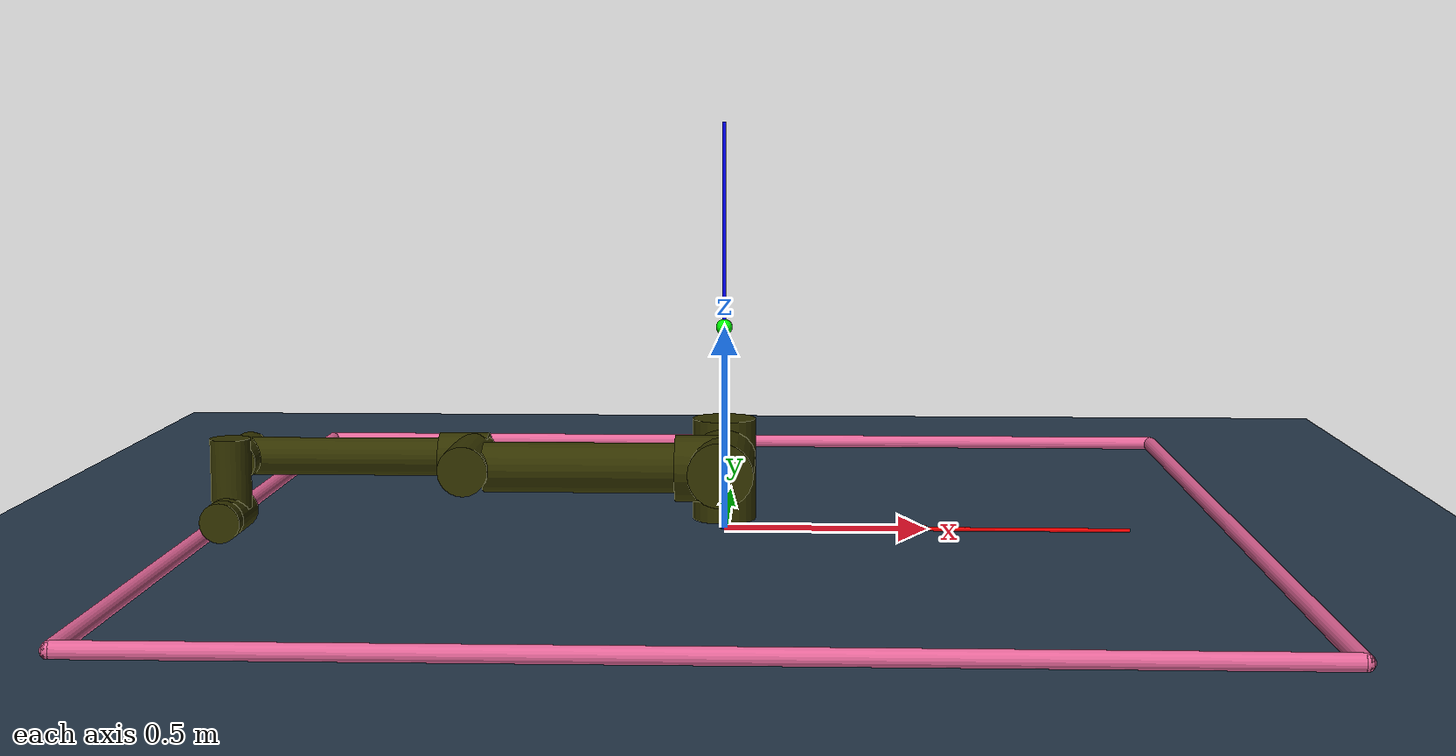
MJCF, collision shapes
<mujoco model="UR10E_scene">
  <compiler angle="radian" meshdir="mesh/"/>

  <option timestep="0.002" integrator="implicitfast"/>

  <size nkey="1"/>

  <visual>
    <map stiffness="700" fogstart="1" fogend="15" zfar="40" haze="1" shadowscale="0.5"/>
    <rgba haze="0.15 0.25 0.35 1"/>
  </visual>

  <statistic meansize="0.05"/>

  <default>
    <light castshadow="false"/>
    <general biastype="affine" biasprm="0 -1"/>
    <default class="UR10E_main">
      <light castshadow="true"/>
      <general biastype="none" biasprm="0 0"/>
      <default class="UR10E_robot">
        <material shininess="0.25"/>
        <joint range="-6.28319 6.28319" armature="0.1"/>
        <site size="0.001 0.005 0.005" group="4" rgba="0.5 0.5 0.5 0.3"/>
        <general ctrlrange="-6.2831 6.2831" biastype="affine" gainprm="5000" biasprm="0 -5000 -500"/>
        <default class="UR10E_size4">
          <joint damping="10"/>
          <general forcerange="-330 330"/>
        </default>
        <default class="UR10E_size3">
          <joint damping="5"/>
          <general forcerange="-150 150"/>
          <default class="UR10E_size3_limited">
            <joint range="-3.1415 3.1415"/>
            <general ctrlrange="-3.1415 3.1415"/>
          </default>
        </default>
        <default class="UR10E_size2">
          <joint damping="2"/>
          <general forcerange="-56 56"/>
        </default>
        <default class="UR10E_visual">
          <geom type="mesh" contype="0" conaffinity="0" group="2"/>
        </default>
        <default class="UR10E_collision">
          <geom type="cylinder" group="3" rgba="0.2 0.2 0 1"/>
        </default>
      </default>
    </default>
  </default>

  <asset>
    <texture type="skybox" colorspace="auto" builtin="gradient" rgb1="0.3 0.5 0.7" rgb2="0 0 0" width="512" height="3072"/>
    <texture type="2d" colorspace="auto" name="texplane" builtin="checker" mark="cross" rgb1="0.2 0.3 0.4" rgb2="0.1 0.15 0.2" markrgb="0.8 0.8 0.8" width="512" height="512"/>
    <material name="matplane" texture="texplane" texuniform="true" texrepeat="10 10" reflectance="0.3"/>
    <material name="UR10E_black" class="UR10E_robot" rgba="0.033 0.033 0.033 1"/>
    <material name="UR10E_jointgray" class="UR10E_robot" rgba="0.278 0.278 0.278 1"/>
    <material name="UR10E_linkgray" class="UR10E_robot" rgba="0.82 0.82 0.82 1"/>
    <material name="UR10E_urblue" class="UR10E_robot" rgba="0.49 0.678 0.8 1"/>
    <mesh name="UR10E_base_0" content_type="model/obj" file="ur10e/base_0.obj"/>
    <mesh name="UR10E_base_1" content_type="model/obj" file="ur10e/base_1.obj"/>
    <mesh name="UR10E_shoulder_0" content_type="model/obj" file="ur10e/shoulder_0.obj"/>
    <mesh name="UR10E_shoulder_1" content_type="model/obj" file="ur10e/shoulder_1.obj"/>
    <mesh name="UR10E_shoulder_2" content_type="model/obj" file="ur10e/shoulder_2.obj"/>
    <mesh name="UR10E_upperarm_0" content_type="model/obj" file="ur10e/upperarm_0.obj"/>
    <mesh name="UR10E_upperarm_1" content_type="model/obj" file="ur10e/upperarm_1.obj"/>
    <mesh name="UR10E_upperarm_2" content_type="model/obj" file="ur10e/upperarm_2.obj"/>
    <mesh name="UR10E_upperarm_3" content_type="model/obj" file="ur10e/upperarm_3.obj"/>
    <mesh name="UR10E_forearm_0" content_type="model/obj" file="ur10e/forearm_0.obj"/>
    <mesh name="UR10E_forearm_1" content_type="model/obj" file="ur10e/forearm_1.obj"/>
    <mesh name="UR10E_forearm_2" content_type="model/obj" file="ur10e/forearm_2.obj"/>
    <mesh name="UR10E_forearm_3" content_type="model/obj" file="ur10e/forearm_3.obj"/>
    <mesh name="UR10E_wrist1_0" content_type="model/obj" file="ur10e/wrist1_0.obj"/>
    <mesh name="UR10E_wrist1_1" content_type="model/obj" file="ur10e/wrist1_1.obj"/>
    <mesh name="UR10E_wrist1_2" content_type="model/obj" file="ur10e/wrist1_2.obj"/>
    <mesh name="UR10E_wrist2_0" content_type="model/obj" file="ur10e/wrist2_0.obj"/>
    <mesh name="UR10E_wrist2_1" content_type="model/obj" file="ur10e/wrist2_1.obj"/>
    <mesh name="UR10E_wrist2_2" content_type="model/obj" file="ur10e/wrist2_2.obj"/>
    <mesh name="UR10E_wrist3" content_type="model/obj" file="ur10e/wrist3.obj"/>
  </asset>

  <worldbody>
    <geom name="ground" size="0 0 1" type="plane" condim="1" material="matplane"/>
    <!-- Arena testing how to add stuff and to show limit range-->
    <geom conaffinity="0" fromto="-1.25 -1.25 .01 1.25 -1.25 .01" name="sideS" rgba="0.9 0.4 0.6 1" size=".02" type="capsule"/>
    <geom conaffinity="0" fromto=" 1.25 -1.25 .01 1.25  1.25 .01" name="sideE" rgba="0.9 0.4 0.6 1" size=".02" type="capsule"/>
    <geom conaffinity="0" fromto="-1.25  1.25 .01 1.25  1.25 .01" name="sideN" rgba="0.9 0.4 0.6 1" size=".02" type="capsule"/>
    <geom conaffinity="0" fromto="-1.25 -1.25 .01 -1.25 1.25 .01" name="sideW" rgba="0.9 0.4 0.6 1" size=".02" type="capsule"/>
    <!-- Arm the robot-->
    <site pos="0.5 0 0" quat="0.707107 0 0.707107 0" size="0.005 0.5" type="cylinder" rgba="1 0 0 1"/>
    <site pos="0 0.5 0" quat="0.707107 0.707107 0 0" size="0.005 0.5" type="cylinder" rgba="0 1 0 1"/>
    <site pos="0 0 0.5" size="0.005 0.5" type="cylinder" rgba="0 0 1 1"/>
    <light pos="0 0 2" dir="0 0 -1" diffuse="0.4 0.4 0.4" specular="0.1 0.1 0.1"/>
    <light pos="0 0 4" dir="0 0 -1" type="directional" diffuse="0.8 0.8 0.8" specular="0.2 0.2 0.2"/>

    <body name="UR10E" childclass="UR10E_robot">
      <site name="UR10E_x" pos="0.25 0 0" quat="0.707107 0 0.707107 0" size="0.01 0.25" group="1" type="cylinder" rgba="1 0 0 1"/>
      <site name="UR10E_y" pos="0 0.25 0" quat="0.707107 0.707107 0 0" size="0.01 0.25" group="1" type="cylinder" rgba="0 1 0 1"/>
      <site name="UR10E_z" pos="0 0 0.25" size="0.01 0.25" group="1" type="cylinder" rgba="0 0 1 1"/>
      <body name="UR10E_base_link" quat="0 0 0 1">
        <inertial pos="0 0 0" quat="0.5 0.5 -0.5 0.5" mass="3.761" diaginertia="0.01125 0.00610633 0.00610633"/>
        <geom class="UR10E_visual" material="UR10E_black" mesh="UR10E_base_0"/>
        <geom class="UR10E_visual" material="UR10E_jointgray" mesh="UR10E_base_1"/>
        <geom class="UR10E_collision" size="0.078 0.125" pos="0 0 0.15"/>
        <body name="UR10E_shoulder_link" pos="0 0 0.1807">
          <inertial pos="0.021 0 0.027" mass="7.369" diaginertia="0.0314743 0.0314743 0.0218756"/>
          <joint name="UR10E_shoulder_pan_joint" class="UR10E_size4" pos="0 0 0" axis="0 0 1"/>
          <geom class="UR10E_visual" material="UR10E_urblue" mesh="UR10E_shoulder_0"/>
          <geom class="UR10E_visual" material="UR10E_black" mesh="UR10E_shoulder_1"/>
          <geom class="UR10E_visual" material="UR10E_jointgray" mesh="UR10E_shoulder_2"/>
          <body name="UR10E_upper_arm_link" pos="0 0.17615 0" quat="0.707107 0 0.707107 0">
            <inertial pos="0 -0.0227 0.2327" mass="13.051" diaginertia="0.423074 0.423074 0.0363656"/>
            <joint name="UR10E_shoulder_lift_joint" class="UR10E_size4" pos="0 0 0" axis="0 1 0"/>
            <geom class="UR10E_visual" material="UR10E_black" mesh="UR10E_upperarm_0"/>
            <geom class="UR10E_visual" material="UR10E_jointgray" mesh="UR10E_upperarm_1"/>
            <geom class="UR10E_visual" material="UR10E_urblue" mesh="UR10E_upperarm_2"/>
            <geom class="UR10E_visual" material="UR10E_linkgray" mesh="UR10E_upperarm_3"/>
            <geom class="UR10E_collision" size="0.078 0.125" pos="0 -0.02 0" quat="0.707107 0.707107 0 0"/>
            <geom class="UR10E_collision" size="0.08 0.055" pos="0 0 0.055"/>
            <geom class="UR10E_collision" size="0.06 0.24" pos="0 0 0.33"/>
            <body name="UR10E_forearm_link" pos="0 -0.137 0.6127">
              <inertial pos="0 0.0289 0.3316" mass="3.989" diaginertia="0.11059 0.11059 0.0108844"/>
              <joint name="UR10E_elbow_joint" class="UR10E_size3_limited" pos="0 0 0" axis="0 1 0"/>
              <geom class="UR10E_visual" material="UR10E_urblue" mesh="UR10E_forearm_0"/>
              <geom class="UR10E_visual" material="UR10E_black" mesh="UR10E_forearm_1"/>
              <geom class="UR10E_visual" material="UR10E_jointgray" mesh="UR10E_forearm_2"/>
              <geom class="UR10E_visual" material="UR10E_linkgray" mesh="UR10E_forearm_3"/>
              <geom class="UR10E_collision" size="0.06 0.11" pos="0 0.1 0" quat="0.707107 0.707107 0 0"/>
              <geom class="UR10E_collision" size="0.046 0.26" pos="0 0 0.3"/>
              <geom class="UR10E_collision" size="0.06 0.06" pos="0 0 0.025"/>
              <body name="UR10E_wrist_1_link" pos="0 0 0.57155" quat="0.707107 0 0.707107 0">
                <inertial pos="0 0.142 0.018" quat="0.5 0.5 -0.5 0.5" mass="2.1" diaginertia="0.0055125 0.00510825 0.00510825"/>
                <joint name="UR10E_wrist_1_joint" class="UR10E_size2" pos="0 0 0" axis="0 1 0"/>
                <geom class="UR10E_visual" material="UR10E_black" mesh="UR10E_wrist1_0"/>
                <geom class="UR10E_visual" material="UR10E_urblue" mesh="UR10E_wrist1_1"/>
                <geom class="UR10E_visual" material="UR10E_jointgray" mesh="UR10E_wrist1_2"/>
                <geom class="UR10E_collision" size="0.05 0.08" pos="0 0.02 0" quat="0.707107 0.707107 0 0"/>
                <body name="UR10E_wrist_2_link" pos="0 0.135 0">
                  <inertial pos="0 0.018 0.1129" quat="0.5 0.5 -0.5 0.5" mass="1.98" diaginertia="0.0055125 0.00510825 0.00510825"/>
                  <joint name="UR10E_wrist_2_joint" class="UR10E_size2" pos="0 0 0" axis="0 0 1"/>
                  <geom class="UR10E_visual" material="UR10E_black" mesh="UR10E_wrist2_0"/>
                  <geom class="UR10E_visual" material="UR10E_urblue" mesh="UR10E_wrist2_1"/>
                  <geom class="UR10E_visual" material="UR10E_jointgray" mesh="UR10E_wrist2_2"/>
                  <geom class="UR10E_collision" size="0.048 0.085" pos="0 0 0.02"/>
                  <geom class="UR10E_collision" size="0.048 0.07" pos="0 0.008 0.12" quat="0.707107 0.707107 0 0"/>
                  <body name="UR10E_wrist_3_link" pos="0 0 0.11985">
                    <inertial pos="0 0.0905 0" quat="6.34592e-10 0.707107 -0.707107 6.34592e-10" mass="0.615" diaginertia="0.000204525 0.000144346 0.000144346"/>
                    <joint name="UR10E_wrist_3_joint" class="UR10E_size2" pos="0 0 0" axis="0 1 0"/>
                    <geom class="UR10E_visual" material="UR10E_linkgray" mesh="UR10E_wrist3"/>
                    <geom class="UR10E_collision" size="0.048 0.02" pos="0 0.097 0" quat="0.707107 0.707107 0 0"/>
                    <body name="UR10E_flange" pos="0 0.11655 0" quat="0.707107 -0.707107 0 0">
                      <site pos="0.125 0 0" quat="0.707107 0 0.707107 0" size="0.005 0.125" group="3" type="cylinder" rgba="1 0 0 1"/>
                      <site pos="0 0.125 0" quat="0.707107 0.707107 0 0" size="0.005 0.125" group="3" type="cylinder" rgba="0 1 0 1"/>
                      <site pos="0 0 0.125" size="0.005 0.125" group="3" type="cylinder" rgba="0 0 1 1"/>
                      <site name="UR10E_flange" pos="0 0 0"/>
                      <site name="UR10E_TCP" pos="0 0 0"/>
                    </body>
                  </body>
                </body>
              </body>
            </body>
          </body>
        </body>
      </body>
    </body>
    <!-- target I want the arm to reach-->
    <body name="target" pos="0 0 0.5" quat="1 0 0 0">
      <geom name="target_geom" type="sphere" size=".02" rgba="0 1 0 1" contype="0" conaffinity="0"/>
    </body>
  </worldbody>

  <contact>
    <exclude body1="UR10E_base_link" body2="UR10E_upper_arm_link"/>
  </contact>

  <actuator>
    <general name="UR10E_pos_shoulder_pan_joint" class="UR10E_size4" joint="UR10E_shoulder_pan_joint"/>
    <general name="UR10E_pos_shoulder_lift_joint" class="UR10E_size4" joint="UR10E_shoulder_lift_joint"/>
    <general name="UR10E_pos_elbow_joint" class="UR10E_size3_limited" joint="UR10E_elbow_joint"/>
    <general name="UR10E_pos_wrist_1_joint" class="UR10E_size2" joint="UR10E_wrist_1_joint"/>
    <general name="UR10E_pos_wrist_2_joint" class="UR10E_size2" joint="UR10E_wrist_2_joint"/>
    <general name="UR10E_pos_wrist_3_joint" class="UR10E_size2" joint="UR10E_wrist_3_joint"/>
  </actuator>

  <sensor>
    <framepos objtype="site" objname="UR10E_TCP" name="UR10E_pos"/>
    <framequat objtype="site" objname="UR10E_TCP" name="UR10E_ori"/>
    <framelinvel objtype="site" objname="UR10E_TCP" name="UR10E_v"/>
    <frameangvel objtype="site" objname="UR10E_TCP" name="UR10E_w"/>
    <force site="UR10E_TCP" name="UR10E_force" noise="0.5"/>
    <torque site="UR10E_TCP" name="UR10E_torque" noise="0.5"/>
  </sensor>

  <keyframe>
    <key name="UR10E_home" qpos="1.5708 -1.5708 -1.5708 0 1.5708 0" ctrl="1.5708 -1.5708 -1.5708 0 1.5708 0"/>
  </keyframe>
</mujoco>
